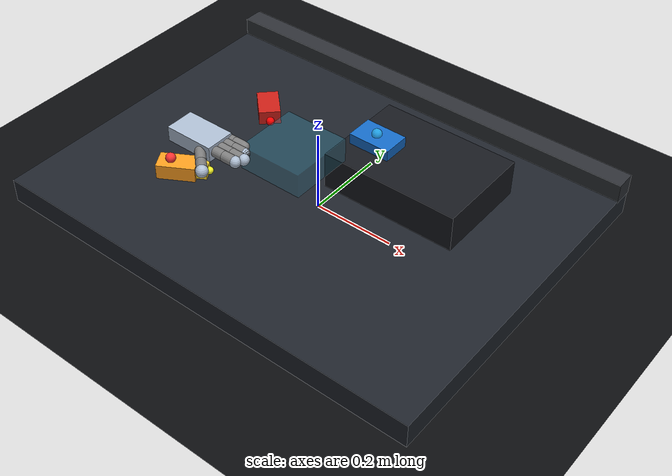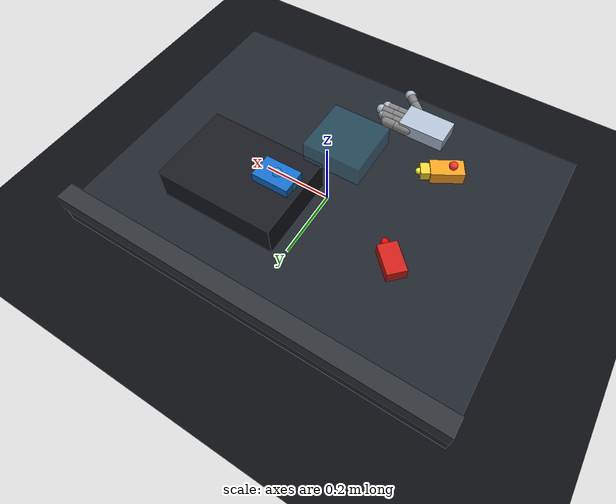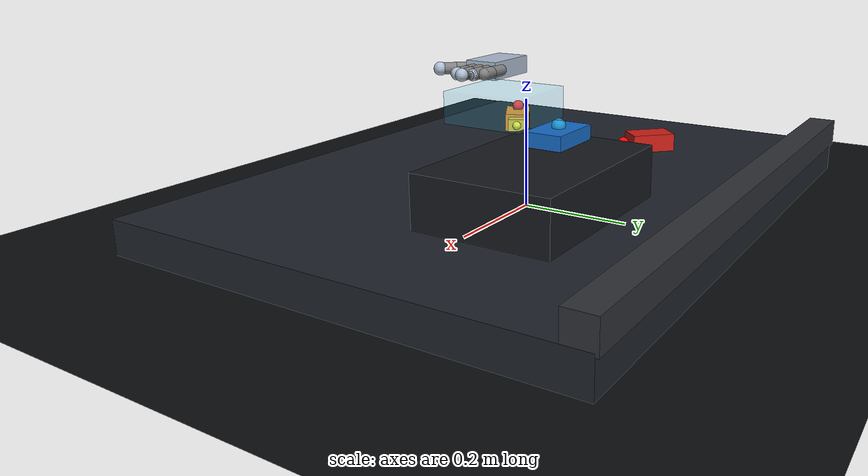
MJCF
<mujoco model="tactile_ev_battery_service_cell">
  <compiler angle="radian" autolimits="true"/>
  <option timestep="0.002" iterations="80" solver="Newton" tolerance="1e-9" cone="elliptic"/>
  <visual><global offwidth="1280" offheight="960"/></visual>
  <size njmax="600" nconmax="300"/>

  <default>
    <default class="finger">
      <joint type="hinge" axis="0 1 0" damping="0.25" armature="0.01" range="-0.25 1.35"/>
      <geom type="capsule" size="0.012" density="650" friction="1.8 0.08 0.02" solimp="0.95 0.99 0.001" solref="0.01 1"/>
    </default>
    <default class="target">
      <geom type="box" contype="0" conaffinity="0" mass="0"/>
    </default>
  </default>

  <asset>
    <material name="worktop" rgba="0.12 0.14 0.17 1"/>
    <material name="handmat" rgba="0.68 0.74 0.82 1"/>
    <material name="plugmat" rgba="1.0 0.62 0.12 1"/>
    <material name="socketmat" rgba="0.08 0.42 0.78 1"/>
    <material name="hazard" rgba="0.8 0.12 0.09 1"/>
    <material name="ok" rgba="0.12 0.78 0.38 0.55"/>
  </asset>

  <worldbody>
    <light name="key" pos="0 -0.7 1.3" dir="0 0.4 -1" diffuse="0.95 0.92 0.86"/>
    <light name="rim" pos="-0.8 0.4 1.0" dir="0.6 -0.2 -1" diffuse="0.35 0.45 0.7"/>
    <camera name="main" pos="0.62 -0.82 0.62" xyaxes="0.80 0.60 0 -0.35 0.47 0.81" fovy="38"/>
    <camera name="top" pos="0.05 -0.05 1.15" xyaxes="1 0 0 0 1 0" fovy="42"/>
    <geom name="floor" type="plane" size="2 2 0.05" rgba="0.045 0.05 0.06 1"/>
    <body name="bench" pos="0 0 0.03">
      <geom name="table" type="box" size="0.55 0.42 0.03" material="worktop" mass="5"/>
      <geom name="service_rim" type="box" pos="0 0.40 0.05" size="0.55 0.025 0.025" rgba="0.18 0.19 0.21 1"/>
    </body>

    <body name="battery_pack" pos="0.18 0.13 0.105">
      <geom name="battery_case" type="box" size="0.17 0.12 0.045" rgba="0.09 0.10 0.12 1" mass="2.5"/>
      <geom name="socket_shell" type="box" pos="-0.10 -0.02 0.045" size="0.052 0.034 0.026" material="socketmat" mass="0.2" friction="1.2 0.03 0.01"/>
      <geom name="socket_cavity" type="box" pos="-0.128 -0.02 0.047" size="0.008 0.023 0.017" rgba="0.01 0.015 0.02 1" contype="0" conaffinity="0"/>
      <site name="socket_goal" pos="-0.138 -0.02 0.047" size="0.018 0.018 0.010" rgba="0.12 0.78 0.38 0.45"/>
      <site name="alignment_gate" pos="-0.102 -0.02 0.075" size="0.012" rgba="0.2 0.8 1 0.6"/>
    </body>

    <body name="plug" pos="-0.26 -0.18 0.095" quat="0.9659 0 0 0.2588">
      <freejoint name="plug_free"/>
      <geom name="plug_body" type="box" size="0.045 0.025 0.018" material="plugmat" mass="0.18" friction="2.1 0.08 0.02"/>
      <geom name="plug_nose" type="box" pos="0.052 0 0" size="0.018 0.018 0.013" rgba="0.96 0.82 0.2 1" mass="0.04" friction="1.8 0.05 0.02"/>
      <site name="plug_tip" pos="0.073 0 0" size="0.009" rgba="1 1 0.15 1"/>
      <site name="plug_grasp" pos="-0.015 0 0.025" size="0.012" rgba="1 0.2 0.2 1"/>
    </body>

    <body name="reject_connector" pos="-0.26 0.13 0.085" quat="0.9239 0 0 -0.3827">
      <freejoint name="reject_free"/>
      <geom name="reject_body" type="box" size="0.042 0.026 0.017" material="hazard" mass="0.14" friction="1.4 0.05 0.02"/>
      <site name="reject_marker" pos="0.055 0 0" size="0.010" rgba="1 0 0 1"/>
    </body>

    <body name="goal_approach" pos="-0.02 -0.06 0.18">
      <geom name="approach_volume" class="target" size="0.08 0.08 0.03" rgba="0.2 0.8 1 0.15"/>
    </body>

    <body name="palm_stage" pos="-0.18 -0.18 0.22">
      <joint name="palm_x" type="slide" axis="1 0 0" range="-0.36 0.18" damping="4"/>
      <joint name="palm_y" type="slide" axis="0 1 0" range="-0.28 0.18" damping="4"/>
      <joint name="palm_z" type="slide" axis="0 0 1" range="-0.12 0.12" damping="4"/>
      <joint name="palm_yaw" type="hinge" axis="0 0 1" range="-1.7 1.7" damping="1"/>
      <geom name="palm" type="box" size="0.060 0.035 0.018" material="handmat" mass="0.35" friction="1.2 0.05 0.02"/>
      <site name="palm_center" pos="0 0 0" size="0.010" rgba="0.7 0.9 1 1"/>

      <body name="thumb_base" pos="0.035 -0.037 0.000" euler="0 0 -0.75">
        <joint name="thumb_abd" class="finger" axis="0 0 1" range="-0.65 0.8"/>
        <geom name="thumb_p1" class="finger" fromto="0 0 0 0.035 0 0"/>
        <body name="thumb_mid" pos="0.035 0 0"><joint name="thumb_flex" class="finger"/><geom name="thumb_p2" class="finger" fromto="0 0 0 0.032 0 0"/><body name="thumb_tip_body" pos="0.032 0 0"><geom name="thumb_tip_geom" type="sphere" size="0.014" material="handmat" friction="2.4 0.09 0.03"/><site name="thumb_tip" size="0.014" rgba="1 0.4 0.3 1"/></body></body>
      </body>
      <body name="index_base" pos="0.045 -0.017 0"><joint name="index_mcp" class="finger"/><geom name="index_p1" class="finger" fromto="0 0 0 0.040 0 0"/><body name="index_mid" pos="0.040 0 0"><joint name="index_pip" class="finger"/><geom name="index_p2" class="finger" fromto="0 0 0 0.032 0 0"/><body name="index_tip_body" pos="0.032 0 0"><geom name="index_tip_geom" type="sphere" size="0.013" material="handmat" friction="2.5 0.1 0.03"/><site name="index_tip" size="0.013" rgba="0.2 1 0.3 1"/></body></body></body>
      <body name="middle_base" pos="0.048 0.000 0"><joint name="middle_mcp" class="finger"/><geom name="middle_p1" class="finger" fromto="0 0 0 0.044 0 0"/><body name="middle_mid" pos="0.044 0 0"><joint name="middle_pip" class="finger"/><geom name="middle_p2" class="finger" fromto="0 0 0 0.034 0 0"/><body name="middle_tip_body" pos="0.034 0 0"><geom name="middle_tip_geom" type="sphere" size="0.013" material="handmat" friction="2.5 0.1 0.03"/><site name="middle_tip" size="0.013" rgba="0.2 0.7 1 1"/></body></body></body>
      <body name="ring_base" pos="0.045 0.017 0"><joint name="ring_mcp" class="finger"/><geom name="ring_p1" class="finger" fromto="0 0 0 0.038 0 0"/><body name="ring_mid" pos="0.038 0 0"><joint name="ring_pip" class="finger"/><geom name="ring_p2" class="finger" fromto="0 0 0 0.030 0 0"/><body name="ring_tip_body" pos="0.030 0 0"><geom name="ring_tip_geom" type="sphere" size="0.012" material="handmat" friction="2.4 0.09 0.03"/><site name="ring_tip" size="0.012" rgba="1 0.6 0.2 1"/></body></body></body>
      <body name="little_base" pos="0.038 0.033 0"><joint name="little_mcp" class="finger"/><geom name="little_p1" class="finger" fromto="0 0 0 0.033 0 0"/><body name="little_mid" pos="0.033 0 0"><joint name="little_pip" class="finger"/><geom name="little_p2" class="finger" fromto="0 0 0 0.026 0 0"/><body name="little_tip_body" pos="0.026 0 0"><geom name="little_tip_geom" type="sphere" size="0.011" material="handmat" friction="2.3 0.08 0.02"/><site name="little_tip" size="0.011" rgba="1 0.2 1 1"/></body></body></body>
    </body>
  </worldbody>

  <tendon>
    <fixed name="index_synergy"><joint joint="index_mcp" coef="0.65"/><joint joint="index_pip" coef="1.0"/></fixed>
    <fixed name="middle_synergy"><joint joint="middle_mcp" coef="0.65"/><joint joint="middle_pip" coef="1.0"/></fixed>
    <fixed name="ring_synergy"><joint joint="ring_mcp" coef="0.7"/><joint joint="ring_pip" coef="1.0"/></fixed>
    <fixed name="little_synergy"><joint joint="little_mcp" coef="0.7"/><joint joint="little_pip" coef="1.0"/></fixed>
  </tendon>

  <actuator>
    <position name="palm_x_act" joint="palm_x" kp="180"/>
    <position name="palm_y_act" joint="palm_y" kp="180"/>
    <position name="palm_z_act" joint="palm_z" kp="180"/>
    <position name="palm_yaw_act" joint="palm_yaw" kp="60"/>
    <position name="thumb_abd_act" joint="thumb_abd" kp="18"/>
    <position name="thumb_flex_act" joint="thumb_flex" kp="18"/>
    <position name="index_synergy_act" tendon="index_synergy" kp="22" ctrlrange="-0.2 1.4"/>
    <position name="middle_synergy_act" tendon="middle_synergy" kp="22" ctrlrange="-0.2 1.4"/>
    <position name="ring_synergy_act" tendon="ring_synergy" kp="18" ctrlrange="-0.2 1.3"/>
    <position name="little_synergy_act" tendon="little_synergy" kp="15" ctrlrange="-0.2 1.2"/>
  </actuator>

  <sensor>
    <framepos name="plug_tip_pos" objtype="site" objname="plug_tip"/>
    <framepos name="socket_goal_pos" objtype="site" objname="socket_goal"/>
    <framequat name="plug_quat" objtype="body" objname="plug"/>
    <jointpos name="palm_x_pos" joint="palm_x"/>
    <jointpos name="index_mcp_pos" joint="index_mcp"/>
    <touch name="thumb_touch" site="thumb_tip"/>
    <touch name="index_touch" site="index_tip"/>
    <touch name="middle_touch" site="middle_tip"/>
    <touch name="ring_touch" site="ring_tip"/>
    <actuatorfrc name="grip_force_index" actuator="index_synergy_act"/>
    <accelerometer name="plug_accel" site="plug_tip"/>
  </sensor>
</mujoco>
